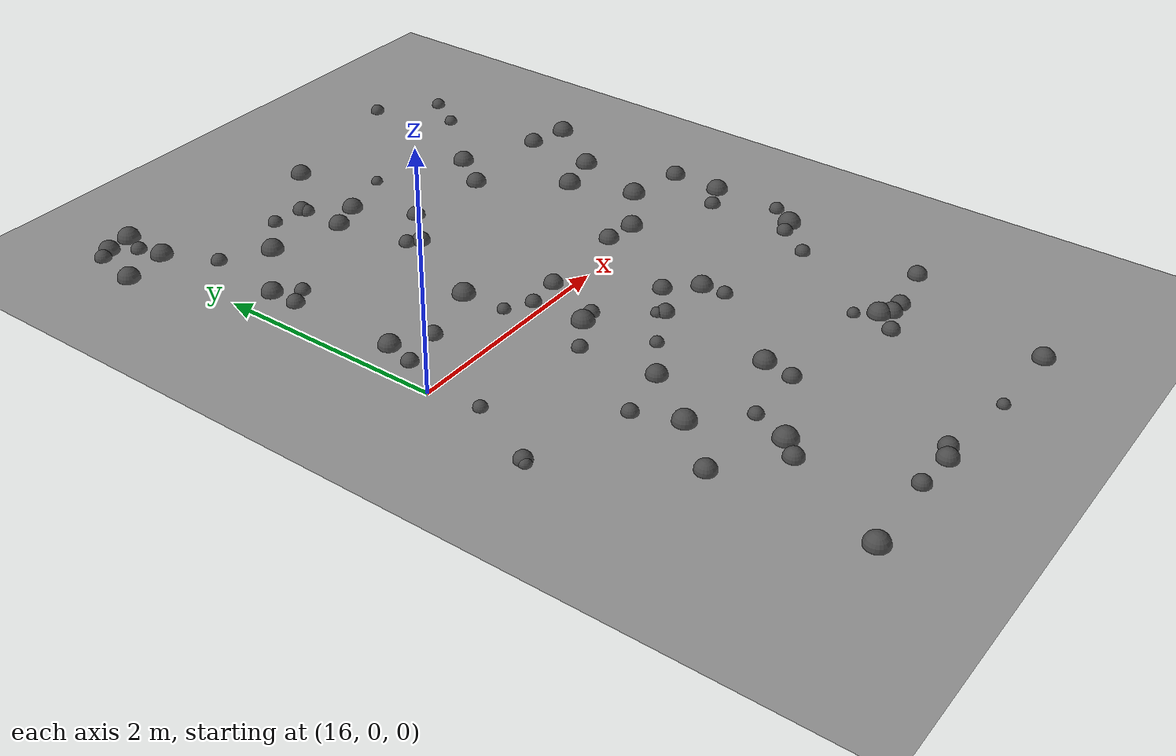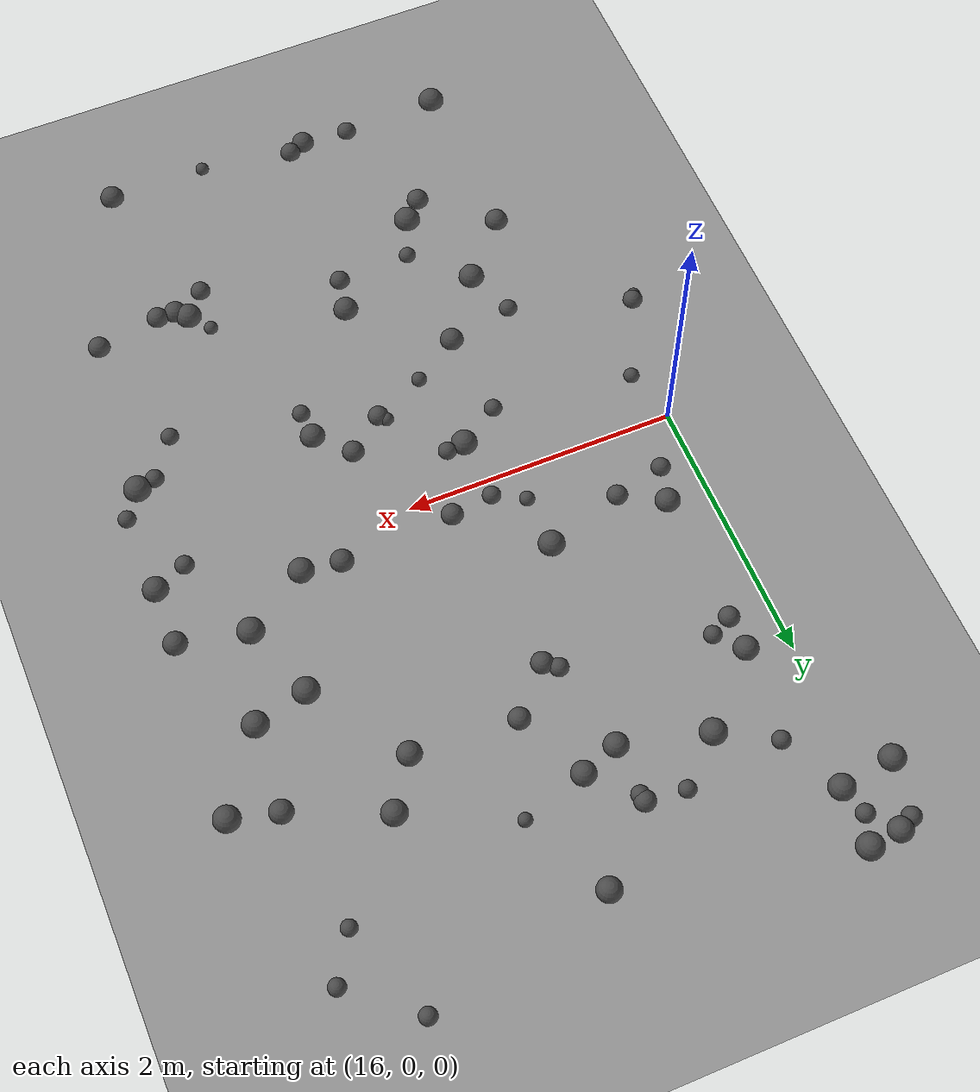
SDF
<sdf version="1.8">
 <world name="bumpy_world">
  <model name="ground_plane">
   <static>true</static>
   <link name="link">
    <collision name="collision">
     <geometry><plane><normal>0 0 1</normal><size>100 100</size></plane></geometry>
    </collision>
    <visual name="visual">
     <geometry><plane><normal>0 0 1</normal><size>100 100</size></plane></geometry>
     <material><ambient>0.6 0.6 0.6 1</ambient><diffuse>0.6 0.6 0.6 1</diffuse></material>
    </visual>
   </link>
  </model>
  <model name="bump_0">
   <static>true</static>
   <pose>17.07979871296993 -2.3560940418442513 0.0 0 0 0</pose>
   <link name="link">
    <collision name="collision">
     <geometry><sphere><radius>0.0981647486818742</radius></sphere></geometry>
     <surface><friction><ode><mu>100.0</mu><mu2>100.0</mu2></ode></friction></surface>
    </collision>
    <visual name="visual">
     <geometry><sphere><radius>0.0981647486818742</radius></sphere></geometry>
     <material><ambient>0.3 0.3 0.3 1</ambient><diffuse>0.3 0.3 0.3 1</diffuse></material>
    </visual>
   </link>
  </model>
  <model name="bump_6">
   <static>true</static>
   <pose>19.598575563349467 -2.1446980017574346 0.0 0 0 0</pose>
   <link name="link">
    <collision name="collision">
     <geometry><sphere><radius>0.08097896778327451</radius></sphere></geometry>
     <surface><friction><ode><mu>100.0</mu><mu2>100.0</mu2></ode></friction></surface>
    </collision>
    <visual name="visual">
     <geometry><sphere><radius>0.08097896778327451</radius></sphere></geometry>
     <material><ambient>0.3 0.3 0.3 1</ambient><diffuse>0.3 0.3 0.3 1</diffuse></material>
    </visual>
   </link>
  </model>
  <model name="bump_8">
   <static>true</static>
   <pose>17.19856203481358 -3.3353982341826844 0.0 0 0 0</pose>
   <link name="link">
    <collision name="collision">
     <geometry><sphere><radius>0.07238395450279482</radius></sphere></geometry>
     <surface><friction><ode><mu>100.0</mu><mu2>100.0</mu2></ode></friction></surface>
    </collision>
    <visual name="visual">
     <geometry><sphere><radius>0.07238395450279482</radius></sphere></geometry>
     <material><ambient>0.3 0.3 0.3 1</ambient><diffuse>0.3 0.3 0.3 1</diffuse></material>
    </visual>
   </link>
  </model>
  <model name="bump_9">
   <static>true</static>
   <pose>17.680362293708182 2.2786300804662707 0.0 0 0 0</pose>
   <link name="link">
    <collision name="collision">
     <geometry><sphere><radius>0.08963292703473585</radius></sphere></geometry>
     <surface><friction><ode><mu>100.0</mu><mu2>100.0</mu2></ode></friction></surface>
    </collision>
    <visual name="visual">
     <geometry><sphere><radius>0.08963292703473585</radius></sphere></geometry>
     <material><ambient>0.3 0.3 0.3 1</ambient><diffuse>0.3 0.3 0.3 1</diffuse></material>
    </visual>
   </link>
  </model>
  <model name="bump_22">
   <static>true</static>
   <pose>15.947673338106666 3.421388019658636 0.0 0 0 0</pose>
   <link name="link">
    <collision name="collision">
     <geometry><sphere><radius>0.08962710731348245</radius></sphere></geometry>
     <surface><friction><ode><mu>100.0</mu><mu2>100.0</mu2></ode></friction></surface>
    </collision>
    <visual name="visual">
     <geometry><sphere><radius>0.08962710731348245</radius></sphere></geometry>
     <material><ambient>0.3 0.3 0.3 1</ambient><diffuse>0.3 0.3 0.3 1</diffuse></material>
    </visual>
   </link>
  </model>
  <model name="bump_24">
   <static>true</static>
   <pose>17.099487515794102 2.639171686759317 0.0 0 0 0</pose>
   <link name="link">
    <collision name="collision">
     <geometry><sphere><radius>0.06339597844373478</radius></sphere></geometry>
     <surface><friction><ode><mu>100.0</mu><mu2>100.0</mu2></ode></friction></surface>
    </collision>
    <visual name="visual">
     <geometry><sphere><radius>0.06339597844373478</radius></sphere></geometry>
     <material><ambient>0.3 0.3 0.3 1</ambient><diffuse>0.3 0.3 0.3 1</diffuse></material>
    </visual>
   </link>
  </model>
  <model name="bump_32">
   <static>true</static>
   <pose>16.472289125123126 -3.3695576696736778 0.0 0 0 0</pose>
   <link name="link">
    <collision name="collision">
     <geometry><sphere><radius>0.09800282768145768</radius></sphere></geometry>
     <surface><friction><ode><mu>100.0</mu><mu2>100.0</mu2></ode></friction></surface>
    </collision>
    <visual name="visual">
     <geometry><sphere><radius>0.09800282768145768</radius></sphere></geometry>
     <material><ambient>0.3 0.3 0.3 1</ambient><diffuse>0.3 0.3 0.3 1</diffuse></material>
    </visual>
   </link>
  </model>
  <model name="bump_36">
   <static>true</static>
   <pose>17.85340117132149 3.0641102025408147 0.0 0 0 0</pose>
   <link name="link">
    <collision name="collision">
     <geometry><sphere><radius>0.08968701825092837</radius></sphere></geometry>
     <surface><friction><ode><mu>100.0</mu><mu2>100.0</mu2></ode></friction></surface>
    </collision>
    <visual name="visual">
     <geometry><sphere><radius>0.08968701825092837</radius></sphere></geometry>
     <material><ambient>0.3 0.3 0.3 1</ambient><diffuse>0.3 0.3 0.3 1</diffuse></material>
    </visual>
   </link>
  </model>
  <model name="bump_38">
   <static>true</static>
   <pose>16.18278624122245 3.447483160343883 0.0 0 0 0</pose>
   <link name="link">
    <collision name="collision">
     <geometry><sphere><radius>0.09750943610712903</radius></sphere></geometry>
     <surface><friction><ode><mu>100.0</mu><mu2>100.0</mu2></ode></friction></surface>
    </collision>
    <visual name="visual">
     <geometry><sphere><radius>0.09750943610712903</radius></sphere></geometry>
     <material><ambient>0.3 0.3 0.3 1</ambient><diffuse>0.3 0.3 0.3 1</diffuse></material>
    </visual>
   </link>
  </model>
  <model name="bump_46">
   <static>true</static>
   <pose>16.689288665471317 -1.3073775609994667 0.0 0 0 0</pose>
   <link name="link">
    <collision name="collision">
     <geometry><sphere><radius>0.06724745304326575</radius></sphere></geometry>
     <surface><friction><ode><mu>100.0</mu><mu2>100.0</mu2></ode></friction></surface>
    </collision>
    <visual name="visual">
     <geometry><sphere><radius>0.06724745304326575</radius></sphere></geometry>
     <material><ambient>0.3 0.3 0.3 1</ambient><diffuse>0.3 0.3 0.3 1</diffuse></material>
    </visual>
   </link>
  </model>
  <model name="bump_47">
   <static>true</static>
   <pose>17.389970325876025 2.6067973228167007 0.0 0 0 0</pose>
   <link name="link">
    <collision name="collision">
     <geometry><sphere><radius>0.07701099163247777</radius></sphere></geometry>
     <surface><friction><ode><mu>100.0</mu><mu2>100.0</mu2></ode></friction></surface>
    </collision>
    <visual name="visual">
     <geometry><sphere><radius>0.07701099163247777</radius></sphere></geometry>
     <material><ambient>0.3 0.3 0.3 1</ambient><diffuse>0.3 0.3 0.3 1</diffuse></material>
    </visual>
   </link>
  </model>
  <model name="bump_56">
   <static>true</static>
   <pose>19.34686265752859 0.45887037669835706 0.0 0 0 0</pose>
   <link name="link">
    <collision name="collision">
     <geometry><sphere><radius>0.09757961537072722</radius></sphere></geometry>
     <surface><friction><ode><mu>100.0</mu><mu2>100.0</mu2></ode></friction></surface>
    </collision>
    <visual name="visual">
     <geometry><sphere><radius>0.09757961537072722</radius></sphere></geometry>
     <material><ambient>0.3 0.3 0.3 1</ambient><diffuse>0.3 0.3 0.3 1</diffuse></material>
    </visual>
   </link>
  </model>
  <model name="bump_62">
   <static>true</static>
   <pose>19.36389741438452 -1.2185180586353517 0.0 0 0 0</pose>
   <link name="link">
    <collision name="collision">
     <geometry><sphere><radius>0.06500405333480536</radius></sphere></geometry>
     <surface><friction><ode><mu>100.0</mu><mu2>100.0</mu2></ode></friction></surface>
    </collision>
    <visual name="visual">
     <geometry><sphere><radius>0.06500405333480536</radius></sphere></geometry>
     <material><ambient>0.3 0.3 0.3 1</ambient><diffuse>0.3 0.3 0.3 1</diffuse></material>
    </visual>
   </link>
  </model>
  <model name="bump_72">
   <static>true</static>
   <pose>18.194704708540716 -0.5952552430335878 0.0 0 0 0</pose>
   <link name="link">
    <collision name="collision">
     <geometry><sphere><radius>0.08009505374050774</radius></sphere></geometry>
     <surface><friction><ode><mu>100.0</mu><mu2>100.0</mu2></ode></friction></surface>
    </collision>
    <visual name="visual">
     <geometry><sphere><radius>0.08009505374050774</radius></sphere></geometry>
     <material><ambient>0.3 0.3 0.3 1</ambient><diffuse>0.3 0.3 0.3 1</diffuse></material>
    </visual>
   </link>
  </model>
  <model name="bump_73">
   <static>true</static>
   <pose>18.418267715492547 -0.8287080446597059 0.0 0 0 0</pose>
   <link name="link">
    <collision name="collision">
     <geometry><sphere><radius>0.0906177599769456</radius></sphere></geometry>
     <surface><friction><ode><mu>100.0</mu><mu2>100.0</mu2></ode></friction></surface>
    </collision>
    <visual name="visual">
     <geometry><sphere><radius>0.0906177599769456</radius></sphere></geometry>
     <material><ambient>0.3 0.3 0.3 1</ambient><diffuse>0.3 0.3 0.3 1</diffuse></material>
    </visual>
   </link>
  </model>
  <model name="bump_75">
   <static>true</static>
   <pose>19.119949259111177 -2.2297628396833944 0.0 0 0 0</pose>
   <link name="link">
    <collision name="collision">
     <geometry><sphere><radius>0.07970548342831324</radius></sphere></geometry>
     <surface><friction><ode><mu>100.0</mu><mu2>100.0</mu2></ode></friction></surface>
    </collision>
    <visual name="visual">
     <geometry><sphere><radius>0.07970548342831324</radius></sphere></geometry>
     <material><ambient>0.3 0.3 0.3 1</ambient><diffuse>0.3 0.3 0.3 1</diffuse></material>
    </visual>
   </link>
  </model>
  <model name="bump_78">
   <static>true</static>
   <pose>19.55062454971193 1.1201559518139677 0.0 0 0 0</pose>
   <link name="link">
    <collision name="collision">
     <geometry><sphere><radius>0.09555177195987825</radius></sphere></geometry>
     <surface><friction><ode><mu>100.0</mu><mu2>100.0</mu2></ode></friction></surface>
    </collision>
    <visual name="visual">
     <geometry><sphere><radius>0.09555177195987825</radius></sphere></geometry>
     <material><ambient>0.3 0.3 0.3 1</ambient><diffuse>0.3 0.3 0.3 1</diffuse></material>
    </visual>
   </link>
  </model>
  <model name="bump_82">
   <static>true</static>
   <pose>16.45433861942613 -2.089132226662912 0.0 0 0 0</pose>
   <link name="link">
    <collision name="collision">
     <geometry><sphere><radius>0.08600865804093002</radius></sphere></geometry>
     <surface><friction><ode><mu>100.0</mu><mu2>100.0</mu2></ode></friction></surface>
    </collision>
    <visual name="visual">
     <geometry><sphere><radius>0.08600865804093002</radius></sphere></geometry>
     <material><ambient>0.3 0.3 0.3 1</ambient><diffuse>0.3 0.3 0.3 1</diffuse></material>
    </visual>
   </link>
  </model>
  <model name="bump_83">
   <static>true</static>
   <pose>18.42836967293816 -1.0365094989912547 0.0 0 0 0</pose>
   <link name="link">
    <collision name="collision">
     <geometry><sphere><radius>0.06494916149868013</radius></sphere></geometry>
     <surface><friction><ode><mu>100.0</mu><mu2>100.0</mu2></ode></friction></surface>
    </collision>
    <visual name="visual">
     <geometry><sphere><radius>0.06494916149868013</radius></sphere></geometry>
     <material><ambient>0.3 0.3 0.3 1</ambient><diffuse>0.3 0.3 0.3 1</diffuse></material>
    </visual>
   </link>
  </model>
  <model name="bump_86">
   <static>true</static>
   <pose>17.132019067609086 -0.5473070902024562 0.0 0 0 0</pose>
   <link name="link">
    <collision name="collision">
     <geometry><sphere><radius>0.06591966230128467</radius></sphere></geometry>
     <surface><friction><ode><mu>100.0</mu><mu2>100.0</mu2></ode></friction></surface>
    </collision>
    <visual name="visual">
     <geometry><sphere><radius>0.06591966230128467</radius></sphere></geometry>
     <material><ambient>0.3 0.3 0.3 1</ambient><diffuse>0.3 0.3 0.3 1</diffuse></material>
    </visual>
   </link>
  </model>
  <model name="bump_87">
   <static>true</static>
   <pose>17.4363822288074 -0.35768258507419537 0.0 0 0 0</pose>
   <link name="link">
    <collision name="collision">
     <geometry><sphere><radius>0.09575408027139831</radius></sphere></geometry>
     <surface><friction><ode><mu>100.0</mu><mu2>100.0</mu2></ode></friction></surface>
    </collision>
    <visual name="visual">
     <geometry><sphere><radius>0.09575408027139831</radius></sphere></geometry>
     <material><ambient>0.3 0.3 0.3 1</ambient><diffuse>0.3 0.3 0.3 1</diffuse></material>
    </visual>
   </link>
  </model>
  <model name="bump_88">
   <static>true</static>
   <pose>16.83009557272714 -1.678151481398853 0.0 0 0 0</pose>
   <link name="link">
    <collision name="collision">
     <geometry><sphere><radius>0.09513688142090139</radius></sphere></geometry>
     <surface><friction><ode><mu>100.0</mu><mu2>100.0</mu2></ode></friction></surface>
    </collision>
    <visual name="visual">
     <geometry><sphere><radius>0.09513688142090139</radius></sphere></geometry>
     <material><ambient>0.3 0.3 0.3 1</ambient><diffuse>0.3 0.3 0.3 1</diffuse></material>
    </visual>
   </link>
  </model>
  <model name="bump_98">
   <static>true</static>
   <pose>19.154594646729254 1.0197678209088616 0.0 0 0 0</pose>
   <link name="link">
    <collision name="collision">
     <geometry><sphere><radius>0.09743809379586572</radius></sphere></geometry>
     <surface><friction><ode><mu>100.0</mu><mu2>100.0</mu2></ode></friction></surface>
    </collision>
    <visual name="visual">
     <geometry><sphere><radius>0.09743809379586572</radius></sphere></geometry>
     <material><ambient>0.3 0.3 0.3 1</ambient><diffuse>0.3 0.3 0.3 1</diffuse></material>
    </visual>
   </link>
  </model>
  <model name="bump_114">
   <static>true</static>
   <pose>17.520706247058403 1.5164167162670639 0.0 0 0 0</pose>
   <link name="link">
    <collision name="collision">
     <geometry><sphere><radius>0.06862960299075734</radius></sphere></geometry>
     <surface><friction><ode><mu>100.0</mu><mu2>100.0</mu2></ode></friction></surface>
    </collision>
    <visual name="visual">
     <geometry><sphere><radius>0.06862960299075734</radius></sphere></geometry>
     <material><ambient>0.3 0.3 0.3 1</ambient><diffuse>0.3 0.3 0.3 1</diffuse></material>
    </visual>
   </link>
  </model>
  <model name="bump_115">
   <static>true</static>
   <pose>19.47252867523409 2.656219310732795 0.0 0 0 0</pose>
   <link name="link">
    <collision name="collision">
     <geometry><sphere><radius>0.05844697921191586</radius></sphere></geometry>
     <surface><friction><ode><mu>100.0</mu><mu2>100.0</mu2></ode></friction></surface>
    </collision>
    <visual name="visual">
     <geometry><sphere><radius>0.05844697921191586</radius></sphere></geometry>
     <material><ambient>0.3 0.3 0.3 1</ambient><diffuse>0.3 0.3 0.3 1</diffuse></material>
    </visual>
   </link>
  </model>
  <model name="bump_121">
   <static>true</static>
   <pose>16.162681675537215 3.016962293963446 0.0 0 0 0</pose>
   <link name="link">
    <collision name="collision">
     <geometry><sphere><radius>0.09480578830405986</radius></sphere></geometry>
     <surface><friction><ode><mu>100.0</mu><mu2>100.0</mu2></ode></friction></surface>
    </collision>
    <visual name="visual">
     <geometry><sphere><radius>0.09480578830405986</radius></sphere></geometry>
     <material><ambient>0.3 0.3 0.3 1</ambient><diffuse>0.3 0.3 0.3 1</diffuse></material>
    </visual>
   </link>
  </model>
  <model name="bump_124">
   <static>true</static>
   <pose>16.29535092047655 0.6318749269642971 0.0 0 0 0</pose>
   <link name="link">
    <collision name="collision">
     <geometry><sphere><radius>0.09061940047009012</radius></sphere></geometry>
     <surface><friction><ode><mu>100.0</mu><mu2>100.0</mu2></ode></friction></surface>
    </collision>
    <visual name="visual">
     <geometry><sphere><radius>0.09061940047009012</radius></sphere></geometry>
     <material><ambient>0.3 0.3 0.3 1</ambient><diffuse>0.3 0.3 0.3 1</diffuse></material>
    </visual>
   </link>
  </model>
  <model name="bump_132">
   <static>true</static>
   <pose>18.902184356935408 -2.154123472196843 0.0 0 0 0</pose>
   <link name="link">
    <collision name="collision">
     <geometry><sphere><radius>0.09496327988141692</radius></sphere></geometry>
     <surface><friction><ode><mu>100.0</mu><mu2>100.0</mu2></ode></friction></surface>
    </collision>
    <visual name="visual">
     <geometry><sphere><radius>0.09496327988141692</radius></sphere></geometry>
     <material><ambient>0.3 0.3 0.3 1</ambient><diffuse>0.3 0.3 0.3 1</diffuse></material>
    </visual>
   </link>
  </model>
  <model name="bump_136">
   <static>true</static>
   <pose>18.870643007627642 0.15819835811263516 0.0 0 0 0</pose>
   <link name="link">
    <collision name="collision">
     <geometry><sphere><radius>0.09372548497860929</radius></sphere></geometry>
     <surface><friction><ode><mu>100.0</mu><mu2>100.0</mu2></ode></friction></surface>
    </collision>
    <visual name="visual">
     <geometry><sphere><radius>0.09372548497860929</radius></sphere></geometry>
     <material><ambient>0.3 0.3 0.3 1</ambient><diffuse>0.3 0.3 0.3 1</diffuse></material>
    </visual>
   </link>
  </model>
  <model name="bump_139">
   <static>true</static>
   <pose>16.297323611876266 1.6187691690210961 0.0 0 0 0</pose>
   <link name="link">
    <collision name="collision">
     <geometry><sphere><radius>0.075499654712263</radius></sphere></geometry>
     <surface><friction><ode><mu>100.0</mu><mu2>100.0</mu2></ode></friction></surface>
    </collision>
    <visual name="visual">
     <geometry><sphere><radius>0.075499654712263</radius></sphere></geometry>
     <material><ambient>0.3 0.3 0.3 1</ambient><diffuse>0.3 0.3 0.3 1</diffuse></material>
    </visual>
   </link>
  </model>
  <model name="bump_147">
   <static>true</static>
   <pose>16.458925113242138 1.6975894778949208 0.0 0 0 0</pose>
   <link name="link">
    <collision name="collision">
     <geometry><sphere><radius>0.06601161167172308</radius></sphere></geometry>
     <surface><friction><ode><mu>100.0</mu><mu2>100.0</mu2></ode></friction></surface>
    </collision>
    <visual name="visual">
     <geometry><sphere><radius>0.06601161167172308</radius></sphere></geometry>
     <material><ambient>0.3 0.3 0.3 1</ambient><diffuse>0.3 0.3 0.3 1</diffuse></material>
    </visual>
   </link>
  </model>
  <model name="bump_157">
   <static>true</static>
   <pose>18.683406757813138 1.7074922717335559 0.0 0 0 0</pose>
   <link name="link">
    <collision name="collision">
     <geometry><sphere><radius>0.08823129737651168</radius></sphere></geometry>
     <surface><friction><ode><mu>100.0</mu><mu2>100.0</mu2></ode></friction></surface>
    </collision>
    <visual name="visual">
     <geometry><sphere><radius>0.08823129737651168</radius></sphere></geometry>
     <material><ambient>0.3 0.3 0.3 1</ambient><diffuse>0.3 0.3 0.3 1</diffuse></material>
    </visual>
   </link>
  </model>
  <model name="bump_161">
   <static>true</static>
   <pose>18.748472275697935 -2.3345794636134647 0.0 0 0 0</pose>
   <link name="link">
    <collision name="collision">
     <geometry><sphere><radius>0.07258995446851428</radius></sphere></geometry>
     <surface><friction><ode><mu>100.0</mu><mu2>100.0</mu2></ode></friction></surface>
    </collision>
    <visual name="visual">
     <geometry><sphere><radius>0.07258995446851428</radius></sphere></geometry>
     <material><ambient>0.3 0.3 0.3 1</ambient><diffuse>0.3 0.3 0.3 1</diffuse></material>
    </visual>
   </link>
  </model>
  <model name="bump_162">
   <static>true</static>
   <pose>19.60162011837938 1.7625878868446465 0.0 0 0 0</pose>
   <link name="link">
    <collision name="collision">
     <geometry><sphere><radius>0.08510220022439685</radius></sphere></geometry>
     <surface><friction><ode><mu>100.0</mu><mu2>100.0</mu2></ode></friction></surface>
    </collision>
    <visual name="visual">
     <geometry><sphere><radius>0.08510220022439685</radius></sphere></geometry>
     <material><ambient>0.3 0.3 0.3 1</ambient><diffuse>0.3 0.3 0.3 1</diffuse></material>
    </visual>
   </link>
  </model>
  <model name="bump_169">
   <static>true</static>
   <pose>17.87587967022179 -0.7549362397621455 0.0 0 0 0</pose>
   <link name="link">
    <collision name="collision">
     <geometry><sphere><radius>0.051248456655068504</radius></sphere></geometry>
     <surface><friction><ode><mu>100.0</mu><mu2>100.0</mu2></ode></friction></surface>
    </collision>
    <visual name="visual">
     <geometry><sphere><radius>0.051248456655068504</radius></sphere></geometry>
     <material><ambient>0.3 0.3 0.3 1</ambient><diffuse>0.3 0.3 0.3 1</diffuse></material>
    </visual>
   </link>
  </model>
  <model name="bump_178">
   <static>true</static>
   <pose>16.767554158839253 2.3404621493475677 0.0 0 0 0</pose>
   <link name="link">
    <collision name="collision">
     <geometry><sphere><radius>0.09636098036421113</radius></sphere></geometry>
     <surface><friction><ode><mu>100.0</mu><mu2>100.0</mu2></ode></friction></surface>
    </collision>
    <visual name="visual">
     <geometry><sphere><radius>0.09636098036421113</radius></sphere></geometry>
     <material><ambient>0.3 0.3 0.3 1</ambient><diffuse>0.3 0.3 0.3 1</diffuse></material>
    </visual>
   </link>
  </model>
  <model name="bump_179">
   <static>true</static>
   <pose>18.784706224902283 -1.9926772906395667 0.0 0 0 0</pose>
   <link name="link">
    <collision name="collision">
     <geometry><sphere><radius>0.05138108580985162</radius></sphere></geometry>
     <surface><friction><ode><mu>100.0</mu><mu2>100.0</mu2></ode></friction></surface>
    </collision>
    <visual name="visual">
     <geometry><sphere><radius>0.05138108580985162</radius></sphere></geometry>
     <material><ambient>0.3 0.3 0.3 1</ambient><diffuse>0.3 0.3 0.3 1</diffuse></material>
    </visual>
   </link>
  </model>
  <model name="bump_181">
   <static>true</static>
   <pose>19.84504334662592 -0.09053285257841726 0.0 0 0 0</pose>
   <link name="link">
    <collision name="collision">
     <geometry><sphere><radius>0.09305511741537476</radius></sphere></geometry>
     <surface><friction><ode><mu>100.0</mu><mu2>100.0</mu2></ode></friction></surface>
    </collision>
    <visual name="visual">
     <geometry><sphere><radius>0.09305511741537476</radius></sphere></geometry>
     <material><ambient>0.3 0.3 0.3 1</ambient><diffuse>0.3 0.3 0.3 1</diffuse></material>
    </visual>
   </link>
  </model>
  <model name="bump_185">
   <static>true</static>
   <pose>17.401207043087666 2.1772039550751137 0.0 0 0 0</pose>
   <link name="link">
    <collision name="collision">
     <geometry><sphere><radius>0.08892951698667187</radius></sphere></geometry>
     <surface><friction><ode><mu>100.0</mu><mu2>100.0</mu2></ode></friction></surface>
    </collision>
    <visual name="visual">
     <geometry><sphere><radius>0.08892951698667187</radius></sphere></geometry>
     <material><ambient>0.3 0.3 0.3 1</ambient><diffuse>0.3 0.3 0.3 1</diffuse></material>
    </visual>
   </link>
  </model>
  <model name="bump_190">
   <static>true</static>
   <pose>17.75410370124132 -2.025419872145177 0.0 0 0 0</pose>
   <link name="link">
    <collision name="collision">
     <geometry><sphere><radius>0.07421215551935681</radius></sphere></geometry>
     <surface><friction><ode><mu>100.0</mu><mu2>100.0</mu2></ode></friction></surface>
    </collision>
    <visual name="visual">
     <geometry><sphere><radius>0.07421215551935681</radius></sphere></geometry>
     <material><ambient>0.3 0.3 0.3 1</ambient><diffuse>0.3 0.3 0.3 1</diffuse></material>
    </visual>
   </link>
  </model>
  <model name="bump_198">
   <static>true</static>
   <pose>19.600172273046915 -0.19464440757950907 0.0 0 0 0</pose>
   <link name="link">
    <collision name="collision">
     <geometry><sphere><radius>0.06903311618873899</radius></sphere></geometry>
     <surface><friction><ode><mu>100.0</mu><mu2>100.0</mu2></ode></friction></surface>
    </collision>
    <visual name="visual">
     <geometry><sphere><radius>0.06903311618873899</radius></sphere></geometry>
     <material><ambient>0.3 0.3 0.3 1</ambient><diffuse>0.3 0.3 0.3 1</diffuse></material>
    </visual>
   </link>
  </model>
  <model name="bump_201">
   <static>true</static>
   <pose>17.676440509497407 -3.3071520696709413 0.0 0 0 0</pose>
   <link name="link">
    <collision name="collision">
     <geometry><sphere><radius>0.07671037860564975</radius></sphere></geometry>
     <surface><friction><ode><mu>100.0</mu><mu2>100.0</mu2></ode></friction></surface>
    </collision>
    <visual name="visual">
     <geometry><sphere><radius>0.07671037860564975</radius></sphere></geometry>
     <material><ambient>0.3 0.3 0.3 1</ambient><diffuse>0.3 0.3 0.3 1</diffuse></material>
    </visual>
   </link>
  </model>
  <model name="bump_203">
   <static>true</static>
   <pose>15.776739961290362 -1.060026947799423 0.0 0 0 0</pose>
   <link name="link">
    <collision name="collision">
     <geometry><sphere><radius>0.051084060158328295</radius></sphere></geometry>
     <surface><friction><ode><mu>100.0</mu><mu2>100.0</mu2></ode></friction></surface>
    </collision>
    <visual name="visual">
     <geometry><sphere><radius>0.051084060158328295</radius></sphere></geometry>
     <material><ambient>0.3 0.3 0.3 1</ambient><diffuse>0.3 0.3 0.3 1</diffuse></material>
    </visual>
   </link>
  </model>
  <model name="bump_206">
   <static>true</static>
   <pose>17.202132440093752 0.23695915792943234 0.0 0 0 0</pose>
   <link name="link">
    <collision name="collision">
     <geometry><sphere><radius>0.05585871683797736</radius></sphere></geometry>
     <surface><friction><ode><mu>100.0</mu><mu2>100.0</mu2></ode></friction></surface>
    </collision>
    <visual name="visual">
     <geometry><sphere><radius>0.05585871683797736</radius></sphere></geometry>
     <material><ambient>0.3 0.3 0.3 1</ambient><diffuse>0.3 0.3 0.3 1</diffuse></material>
    </visual>
   </link>
  </model>
  <model name="bump_210">
   <static>true</static>
   <pose>16.29578299741359 1.8749002866521085 0.0 0 0 0</pose>
   <link name="link">
    <collision name="collision">
     <geometry><sphere><radius>0.08960534819991779</radius></sphere></geometry>
     <surface><friction><ode><mu>100.0</mu><mu2>100.0</mu2></ode></friction></surface>
    </collision>
    <visual name="visual">
     <geometry><sphere><radius>0.08960534819991779</radius></sphere></geometry>
     <material><ambient>0.3 0.3 0.3 1</ambient><diffuse>0.3 0.3 0.3 1</diffuse></material>
    </visual>
   </link>
  </model>
  <model name="bump_211">
   <static>true</static>
   <pose>19.677487775489002 2.9816733338088754 0.0 0 0 0</pose>
   <link name="link">
    <collision name="collision">
     <geometry><sphere><radius>0.06215255325289894</radius></sphere></geometry>
     <surface><friction><ode><mu>100.0</mu><mu2>100.0</mu2></ode></friction></surface>
    </collision>
    <visual name="visual">
     <geometry><sphere><radius>0.06215255325289894</radius></sphere></geometry>
     <material><ambient>0.3 0.3 0.3 1</ambient><diffuse>0.3 0.3 0.3 1</diffuse></material>
    </visual>
   </link>
  </model>
  <model name="bump_218">
   <static>true</static>
   <pose>17.571632171596846 -0.34057216908053656 0.0 0 0 0</pose>
   <link name="link">
    <collision name="collision">
     <geometry><sphere><radius>0.06766450888572484</radius></sphere></geometry>
     <surface><friction><ode><mu>100.0</mu><mu2>100.0</mu2></ode></friction></surface>
    </collision>
    <visual name="visual">
     <geometry><sphere><radius>0.06766450888572484</radius></sphere></geometry>
     <material><ambient>0.3 0.3 0.3 1</ambient><diffuse>0.3 0.3 0.3 1</diffuse></material>
    </visual>
   </link>
  </model>
  <model name="bump_224">
   <static>true</static>
   <pose>18.3625054130857 -3.418598567792929 0.0 0 0 0</pose>
   <link name="link">
    <collision name="collision">
     <geometry><sphere><radius>0.0505126827282556</radius></sphere></geometry>
     <surface><friction><ode><mu>100.0</mu><mu2>100.0</mu2></ode></friction></surface>
    </collision>
    <visual name="visual">
     <geometry><sphere><radius>0.0505126827282556</radius></sphere></geometry>
     <material><ambient>0.3 0.3 0.3 1</ambient><diffuse>0.3 0.3 0.3 1</diffuse></material>
    </visual>
   </link>
  </model>
  <model name="bump_238">
   <static>true</static>
   <pose>18.982556293100817 -2.2256062584368106 0.0 0 0 0</pose>
   <link name="link">
    <collision name="collision">
     <geometry><sphere><radius>0.08359149641241086</radius></sphere></geometry>
     <surface><friction><ode><mu>100.0</mu><mu2>100.0</mu2></ode></friction></surface>
    </collision>
    <visual name="visual">
     <geometry><sphere><radius>0.08359149641241086</radius></sphere></geometry>
     <material><ambient>0.3 0.3 0.3 1</ambient><diffuse>0.3 0.3 0.3 1</diffuse></material>
    </visual>
   </link>
  </model>
  <model name="bump_239">
   <static>true</static>
   <pose>17.61340828829477 1.4425884022714177 0.0 0 0 0</pose>
   <link name="link">
    <collision name="collision">
     <geometry><sphere><radius>0.08046943878027163</radius></sphere></geometry>
     <surface><friction><ode><mu>100.0</mu><mu2>100.0</mu2></ode></friction></surface>
    </collision>
    <visual name="visual">
     <geometry><sphere><radius>0.08046943878027163</radius></sphere></geometry>
     <material><ambient>0.3 0.3 0.3 1</ambient><diffuse>0.3 0.3 0.3 1</diffuse></material>
    </visual>
   </link>
  </model>
  <model name="bump_245">
   <static>true</static>
   <pose>17.399891060630353 2.554030591148776 0.0 0 0 0</pose>
   <link name="link">
    <collision name="collision">
     <geometry><sphere><radius>0.06481504900200892</radius></sphere></geometry>
     <surface><friction><ode><mu>100.0</mu><mu2>100.0</mu2></ode></friction></surface>
    </collision>
    <visual name="visual">
     <geometry><sphere><radius>0.06481504900200892</radius></sphere></geometry>
     <material><ambient>0.3 0.3 0.3 1</ambient><diffuse>0.3 0.3 0.3 1</diffuse></material>
    </visual>
   </link>
  </model>
  <model name="bump_253">
   <static>true</static>
   <pose>18.926819132301624 2.054134456527186 0.0 0 0 0</pose>
   <link name="link">
    <collision name="collision">
     <geometry><sphere><radius>0.09257959307634255</radius></sphere></geometry>
     <surface><friction><ode><mu>100.0</mu><mu2>100.0</mu2></ode></friction></surface>
    </collision>
    <visual name="visual">
     <geometry><sphere><radius>0.09257959307634255</radius></sphere></geometry>
     <material><ambient>0.3 0.3 0.3 1</ambient><diffuse>0.3 0.3 0.3 1</diffuse></material>
    </visual>
   </link>
  </model>
  <model name="bump_288">
   <static>true</static>
   <pose>16.376853095799685 2.5657279739240977 0.0 0 0 0</pose>
   <link name="link">
    <collision name="collision">
     <geometry><sphere><radius>0.06653248999367031</radius></sphere></geometry>
     <surface><friction><ode><mu>100.0</mu><mu2>100.0</mu2></ode></friction></surface>
    </collision>
    <visual name="visual">
     <geometry><sphere><radius>0.06653248999367031</radius></sphere></geometry>
     <material><ambient>0.3 0.3 0.3 1</ambient><diffuse>0.3 0.3 0.3 1</diffuse></material>
    </visual>
   </link>
  </model>
  <model name="bump_295">
   <static>true</static>
   <pose>17.42309495456404 0.11414153508062785 0.0 0 0 0</pose>
   <link name="link">
    <collision name="collision">
     <geometry><sphere><radius>0.06772940610119858</radius></sphere></geometry>
     <surface><friction><ode><mu>100.0</mu><mu2>100.0</mu2></ode></friction></surface>
    </collision>
    <visual name="visual">
     <geometry><sphere><radius>0.06772940610119858</radius></sphere></geometry>
     <material><ambient>0.3 0.3 0.3 1</ambient><diffuse>0.3 0.3 0.3 1</diffuse></material>
    </visual>
   </link>
  </model>
  <model name="bump_298">
   <static>true</static>
   <pose>19.855933945620773 -0.6913190988487701 0.0 0 0 0</pose>
   <link name="link">
    <collision name="collision">
     <geometry><sphere><radius>0.06449059393959734</radius></sphere></geometry>
     <surface><friction><ode><mu>100.0</mu><mu2>100.0</mu2></ode></friction></surface>
    </collision>
    <visual name="visual">
     <geometry><sphere><radius>0.06449059393959734</radius></sphere></geometry>
     <material><ambient>0.3 0.3 0.3 1</ambient><diffuse>0.3 0.3 0.3 1</diffuse></material>
    </visual>
   </link>
  </model>
  <model name="bump_302">
   <static>true</static>
   <pose>15.84078091889343 3.3698967708241643 0.0 0 0 0</pose>
   <link name="link">
    <collision name="collision">
     <geometry><sphere><radius>0.07083321223537505</radius></sphere></geometry>
     <surface><friction><ode><mu>100.0</mu><mu2>100.0</mu2></ode></friction></surface>
    </collision>
    <visual name="visual">
     <geometry><sphere><radius>0.07083321223537505</radius></sphere></geometry>
     <material><ambient>0.3 0.3 0.3 1</ambient><diffuse>0.3 0.3 0.3 1</diffuse></material>
    </visual>
   </link>
  </model>
  <model name="bump_308">
   <static>true</static>
   <pose>18.161554545854283 2.4254278410237777 0.0 0 0 0</pose>
   <link name="link">
    <collision name="collision">
     <geometry><sphere><radius>0.050926019635140894</radius></sphere></geometry>
     <surface><friction><ode><mu>100.0</mu><mu2>100.0</mu2></ode></friction></surface>
    </collision>
    <visual name="visual">
     <geometry><sphere><radius>0.050926019635140894</radius></sphere></geometry>
     <material><ambient>0.3 0.3 0.3 1</ambient><diffuse>0.3 0.3 0.3 1</diffuse></material>
    </visual>
   </link>
  </model>
  <model name="bump_322">
   <static>true</static>
   <pose>19.71305897427681 -0.8945995072927415 0.0 0 0 0</pose>
   <link name="link">
    <collision name="collision">
     <geometry><sphere><radius>0.09891112765495241</radius></sphere></geometry>
     <surface><friction><ode><mu>100.0</mu><mu2>100.0</mu2></ode></friction></surface>
    </collision>
    <visual name="visual">
     <geometry><sphere><radius>0.09891112765495241</radius></sphere></geometry>
     <material><ambient>0.3 0.3 0.3 1</ambient><diffuse>0.3 0.3 0.3 1</diffuse></material>
    </visual>
   </link>
  </model>
  <model name="bump_329">
   <static>true</static>
   <pose>16.105866210450863 3.2350839969598697 0.0 0 0 0</pose>
   <link name="link">
    <collision name="collision">
     <geometry><sphere><radius>0.06731179508400015</radius></sphere></geometry>
     <surface><friction><ode><mu>100.0</mu><mu2>100.0</mu2></ode></friction></surface>
    </collision>
    <visual name="visual">
     <geometry><sphere><radius>0.06731179508400015</radius></sphere></geometry>
     <material><ambient>0.3 0.3 0.3 1</ambient><diffuse>0.3 0.3 0.3 1</diffuse></material>
    </visual>
   </link>
  </model>
  <model name="bump_330">
   <static>true</static>
   <pose>19.851762141764468 0.3512414458499018 0.0 0 0 0</pose>
   <link name="link">
    <collision name="collision">
     <geometry><sphere><radius>0.08641164983120261</radius></sphere></geometry>
     <surface><friction><ode><mu>100.0</mu><mu2>100.0</mu2></ode></friction></surface>
    </collision>
    <visual name="visual">
     <geometry><sphere><radius>0.08641164983120261</radius></sphere></geometry>
     <material><ambient>0.3 0.3 0.3 1</ambient><diffuse>0.3 0.3 0.3 1</diffuse></material>
    </visual>
   </link>
  </model>
  <model name="bump_333">
   <static>true</static>
   <pose>17.554288454949635 -3.3597223051437966 0.0 0 0 0</pose>
   <link name="link">
    <collision name="collision">
     <geometry><sphere><radius>0.08491466732156872</radius></sphere></geometry>
     <surface><friction><ode><mu>100.0</mu><mu2>100.0</mu2></ode></friction></surface>
    </collision>
    <visual name="visual">
     <geometry><sphere><radius>0.08491466732156872</radius></sphere></geometry>
     <material><ambient>0.3 0.3 0.3 1</ambient><diffuse>0.3 0.3 0.3 1</diffuse></material>
    </visual>
   </link>
  </model>
  <model name="bump_337">
   <static>true</static>
   <pose>16.60396379792186 0.4561202374389137 0.0 0 0 0</pose>
   <link name="link">
    <collision name="collision">
     <geometry><sphere><radius>0.07549025909303514</radius></sphere></geometry>
     <surface><friction><ode><mu>100.0</mu><mu2>100.0</mu2></ode></friction></surface>
    </collision>
    <visual name="visual">
     <geometry><sphere><radius>0.07549025909303514</radius></sphere></geometry>
     <material><ambient>0.3 0.3 0.3 1</ambient><diffuse>0.3 0.3 0.3 1</diffuse></material>
    </visual>
   </link>
  </model>
  <model name="bump_340">
   <static>true</static>
   <pose>19.573796741786637 -0.9303349392411122 0.0 0 0 0</pose>
   <link name="link">
    <collision name="collision">
     <geometry><sphere><radius>0.0685596681541966</radius></sphere></geometry>
     <surface><friction><ode><mu>100.0</mu><mu2>100.0</mu2></ode></friction></surface>
    </collision>
    <visual name="visual">
     <geometry><sphere><radius>0.0685596681541966</radius></sphere></geometry>
     <material><ambient>0.3 0.3 0.3 1</ambient><diffuse>0.3 0.3 0.3 1</diffuse></material>
    </visual>
   </link>
  </model>
  <model name="bump_341">
   <static>true</static>
   <pose>17.201709811538702 -2.0456841380611506 0.0 0 0 0</pose>
   <link name="link">
    <collision name="collision">
     <geometry><sphere><radius>0.06245729522628496</radius></sphere></geometry>
     <surface><friction><ode><mu>100.0</mu><mu2>100.0</mu2></ode></friction></surface>
    </collision>
    <visual name="visual">
     <geometry><sphere><radius>0.06245729522628496</radius></sphere></geometry>
     <material><ambient>0.3 0.3 0.3 1</ambient><diffuse>0.3 0.3 0.3 1</diffuse></material>
    </visual>
   </link>
  </model>
  <model name="bump_343">
   <static>true</static>
   <pose>15.802721960690594 -1.0232111943997984 0.0 0 0 0</pose>
   <link name="link">
    <collision name="collision">
     <geometry><sphere><radius>0.07320285876382178</radius></sphere></geometry>
     <surface><friction><ode><mu>100.0</mu><mu2>100.0</mu2></ode></friction></surface>
    </collision>
    <visual name="visual">
     <geometry><sphere><radius>0.07320285876382178</radius></sphere></geometry>
     <material><ambient>0.3 0.3 0.3 1</ambient><diffuse>0.3 0.3 0.3 1</diffuse></material>
    </visual>
   </link>
  </model>
  <model name="bump_346">
   <static>true</static>
   <pose>19.089703435942067 -3.422895930511766 0.0 0 0 0</pose>
   <link name="link">
    <collision name="collision">
     <geometry><sphere><radius>0.08873788049024842</radius></sphere></geometry>
     <surface><friction><ode><mu>100.0</mu><mu2>100.0</mu2></ode></friction></surface>
    </collision>
    <visual name="visual">
     <geometry><sphere><radius>0.08873788049024842</radius></sphere></geometry>
     <material><ambient>0.3 0.3 0.3 1</ambient><diffuse>0.3 0.3 0.3 1</diffuse></material>
    </visual>
   </link>
  </model>
  <model name="bump_354">
   <static>true</static>
   <pose>17.920768589800257 -0.8049013073303941 0.0 0 0 0</pose>
   <link name="link">
    <collision name="collision">
     <geometry><sphere><radius>0.07512822496744058</radius></sphere></geometry>
     <surface><friction><ode><mu>100.0</mu><mu2>100.0</mu2></ode></friction></surface>
    </collision>
    <visual name="visual">
     <geometry><sphere><radius>0.07512822496744058</radius></sphere></geometry>
     <material><ambient>0.3 0.3 0.3 1</ambient><diffuse>0.3 0.3 0.3 1</diffuse></material>
    </visual>
   </link>
  </model>
  <model name="bump_360">
   <static>true</static>
   <pose>16.224605359624046 0.36638536430368607 0.0 0 0 0</pose>
   <link name="link">
    <collision name="collision">
     <geometry><sphere><radius>0.07041120191077276</radius></sphere></geometry>
     <surface><friction><ode><mu>100.0</mu><mu2>100.0</mu2></ode></friction></surface>
    </collision>
    <visual name="visual">
     <geometry><sphere><radius>0.07041120191077276</radius></sphere></geometry>
     <material><ambient>0.3 0.3 0.3 1</ambient><diffuse>0.3 0.3 0.3 1</diffuse></material>
    </visual>
   </link>
  </model>
  <model name="bump_362">
   <static>true</static>
   <pose>17.187614532312306 0.6319697872811512 0.0 0 0 0</pose>
   <link name="link">
    <collision name="collision">
     <geometry><sphere><radius>0.09631210308087436</radius></sphere></geometry>
     <surface><friction><ode><mu>100.0</mu><mu2>100.0</mu2></ode></friction></surface>
    </collision>
    <visual name="visual">
     <geometry><sphere><radius>0.09631210308087436</radius></sphere></geometry>
     <material><ambient>0.3 0.3 0.3 1</ambient><diffuse>0.3 0.3 0.3 1</diffuse></material>
    </visual>
   </link>
  </model>
  <model name="bump_363">
   <static>true</static>
   <pose>18.58273767913977 0.1958679053280541 0.0 0 0 0</pose>
   <link name="link">
    <collision name="collision">
     <geometry><sphere><radius>0.08497991511032527</radius></sphere></geometry>
     <surface><friction><ode><mu>100.0</mu><mu2>100.0</mu2></ode></friction></surface>
    </collision>
    <visual name="visual">
     <geometry><sphere><radius>0.08497991511032527</radius></sphere></geometry>
     <material><ambient>0.3 0.3 0.3 1</ambient><diffuse>0.3 0.3 0.3 1</diffuse></material>
    </visual>
   </link>
  </model>
  <model name="bump_364">
   <static>true</static>
   <pose>17.533092102497505 -0.9809467386792443 0.0 0 0 0</pose>
   <link name="link">
    <collision name="collision">
     <geometry><sphere><radius>0.056663440681208266</radius></sphere></geometry>
     <surface><friction><ode><mu>100.0</mu><mu2>100.0</mu2></ode></friction></surface>
    </collision>
    <visual name="visual">
     <geometry><sphere><radius>0.056663440681208266</radius></sphere></geometry>
     <material><ambient>0.3 0.3 0.3 1</ambient><diffuse>0.3 0.3 0.3 1</diffuse></material>
    </visual>
   </link>
  </model>
  <model name="bump_367">
   <static>true</static>
   <pose>17.805344706191004 -1.7648296385040383 0.0 0 0 0</pose>
   <link name="link">
    <collision name="collision">
     <geometry><sphere><radius>0.09138598720335361</radius></sphere></geometry>
     <surface><friction><ode><mu>100.0</mu><mu2>100.0</mu2></ode></friction></surface>
    </collision>
    <visual name="visual">
     <geometry><sphere><radius>0.09138598720335361</radius></sphere></geometry>
     <material><ambient>0.3 0.3 0.3 1</ambient><diffuse>0.3 0.3 0.3 1</diffuse></material>
    </visual>
   </link>
  </model>
  <model name="bump_368">
   <static>true</static>
   <pose>19.22232757717318 3.3681678261763377 0.0 0 0 0</pose>
   <link name="link">
    <collision name="collision">
     <geometry><sphere><radius>0.06351476153515262</radius></sphere></geometry>
     <surface><friction><ode><mu>100.0</mu><mu2>100.0</mu2></ode></friction></surface>
    </collision>
    <visual name="visual">
     <geometry><sphere><radius>0.06351476153515262</radius></sphere></geometry>
     <material><ambient>0.3 0.3 0.3 1</ambient><diffuse>0.3 0.3 0.3 1</diffuse></material>
    </visual>
   </link>
  </model>
  <model name="bump_373">
   <static>true</static>
   <pose>17.181410109299957 -1.21102822437821 0.0 0 0 0</pose>
   <link name="link">
    <collision name="collision">
     <geometry><sphere><radius>0.08636273302718123</radius></sphere></geometry>
     <surface><friction><ode><mu>100.0</mu><mu2>100.0</mu2></ode></friction></surface>
    </collision>
    <visual name="visual">
     <geometry><sphere><radius>0.08636273302718123</radius></sphere></geometry>
     <material><ambient>0.3 0.3 0.3 1</ambient><diffuse>0.3 0.3 0.3 1</diffuse></material>
    </visual>
   </link>
  </model>
  <model name="bump_375">
   <static>true</static>
   <pose>17.915989665252848 1.7569988505827547 0.0 0 0 0</pose>
   <link name="link">
    <collision name="collision">
     <geometry><sphere><radius>0.07928374150435274</radius></sphere></geometry>
     <surface><friction><ode><mu>100.0</mu><mu2>100.0</mu2></ode></friction></surface>
    </collision>
    <visual name="visual">
     <geometry><sphere><radius>0.07928374150435274</radius></sphere></geometry>
     <material><ambient>0.3 0.3 0.3 1</ambient><diffuse>0.3 0.3 0.3 1</diffuse></material>
    </visual>
   </link>
  </model>
  <model name="bump_386">
   <static>true</static>
   <pose>16.934998405282688 -2.5017851516654135 0.0 0 0 0</pose>
   <link name="link">
    <collision name="collision">
     <geometry><sphere><radius>0.08130135660047765</radius></sphere></geometry>
     <surface><friction><ode><mu>100.0</mu><mu2>100.0</mu2></ode></friction></surface>
    </collision>
    <visual name="visual">
     <geometry><sphere><radius>0.08130135660047765</radius></sphere></geometry>
     <material><ambient>0.3 0.3 0.3 1</ambient><diffuse>0.3 0.3 0.3 1</diffuse></material>
    </visual>
   </link>
  </model>
  <model name="bump_388">
   <static>true</static>
   <pose>15.76050027384842 2.9601549941830987 0.0 0 0 0</pose>
   <link name="link">
    <collision name="collision">
     <geometry><sphere><radius>0.09481911213871934</radius></sphere></geometry>
     <surface><friction><ode><mu>100.0</mu><mu2>100.0</mu2></ode></friction></surface>
    </collision>
    <visual name="visual">
     <geometry><sphere><radius>0.09481911213871934</radius></sphere></geometry>
     <material><ambient>0.3 0.3 0.3 1</ambient><diffuse>0.3 0.3 0.3 1</diffuse></material>
    </visual>
   </link>
  </model>
  <model name="bump_393">
   <static>true</static>
   <pose>17.73827718171588 0.15164016276487402 0.0 0 0 0</pose>
   <link name="link">
    <collision name="collision">
     <geometry><sphere><radius>0.08028422899222878</radius></sphere></geometry>
     <surface><friction><ode><mu>100.0</mu><mu2>100.0</mu2></ode></friction></surface>
    </collision>
    <visual name="visual">
     <geometry><sphere><radius>0.08028422899222878</radius></sphere></geometry>
     <material><ambient>0.3 0.3 0.3 1</ambient><diffuse>0.3 0.3 0.3 1</diffuse></material>
    </visual>
   </link>
  </model>
  <model name="bump_394">
   <static>true</static>
   <pose>19.94520150611495 1.6745485247928897 0.0 0 0 0</pose>
   <link name="link">
    <collision name="collision">
     <geometry><sphere><radius>0.09523357408901123</radius></sphere></geometry>
     <surface><friction><ode><mu>100.0</mu><mu2>100.0</mu2></ode></friction></surface>
    </collision>
    <visual name="visual">
     <geometry><sphere><radius>0.09523357408901123</radius></sphere></geometry>
     <material><ambient>0.3 0.3 0.3 1</ambient><diffuse>0.3 0.3 0.3 1</diffuse></material>
    </visual>
   </link>
  </model>
  <model name="bump_396">
   <static>true</static>
   <pose>16.092642913414362 -0.41484699453777285 0.0 0 0 0</pose>
   <link name="link">
    <collision name="collision">
     <geometry><sphere><radius>0.057888970990347996</radius></sphere></geometry>
     <surface><friction><ode><mu>100.0</mu><mu2>100.0</mu2></ode></friction></surface>
    </collision>
    <visual name="visual">
     <geometry><sphere><radius>0.057888970990347996</radius></sphere></geometry>
     <material><ambient>0.3 0.3 0.3 1</ambient><diffuse>0.3 0.3 0.3 1</diffuse></material>
    </visual>
   </link>
  </model>
 </world>
</sdf>
